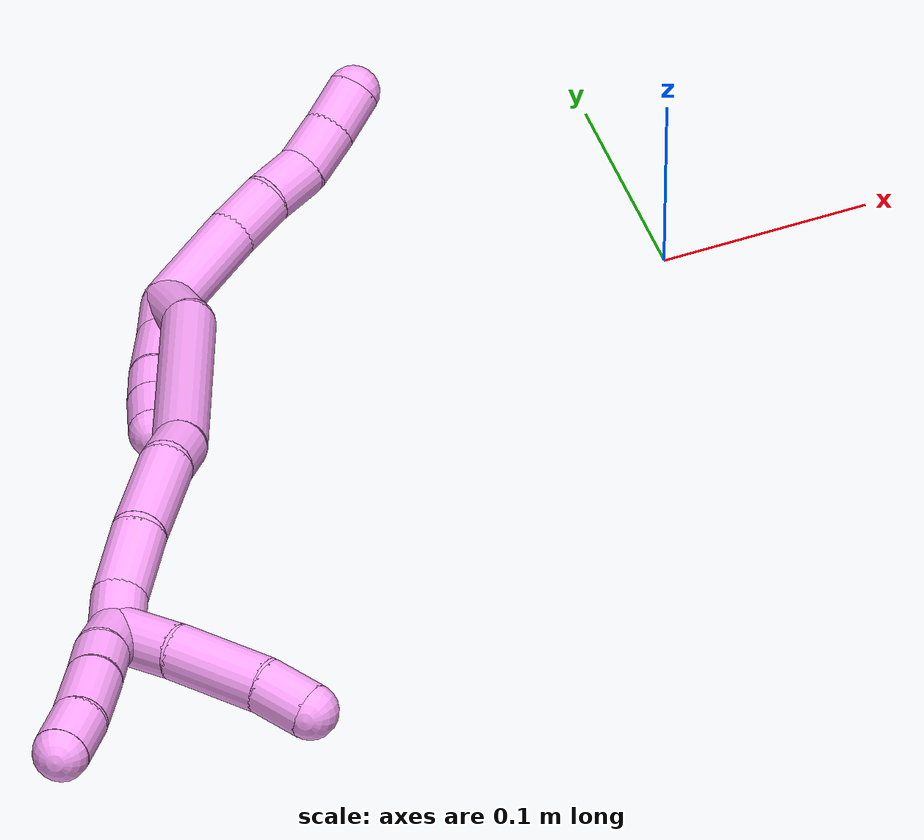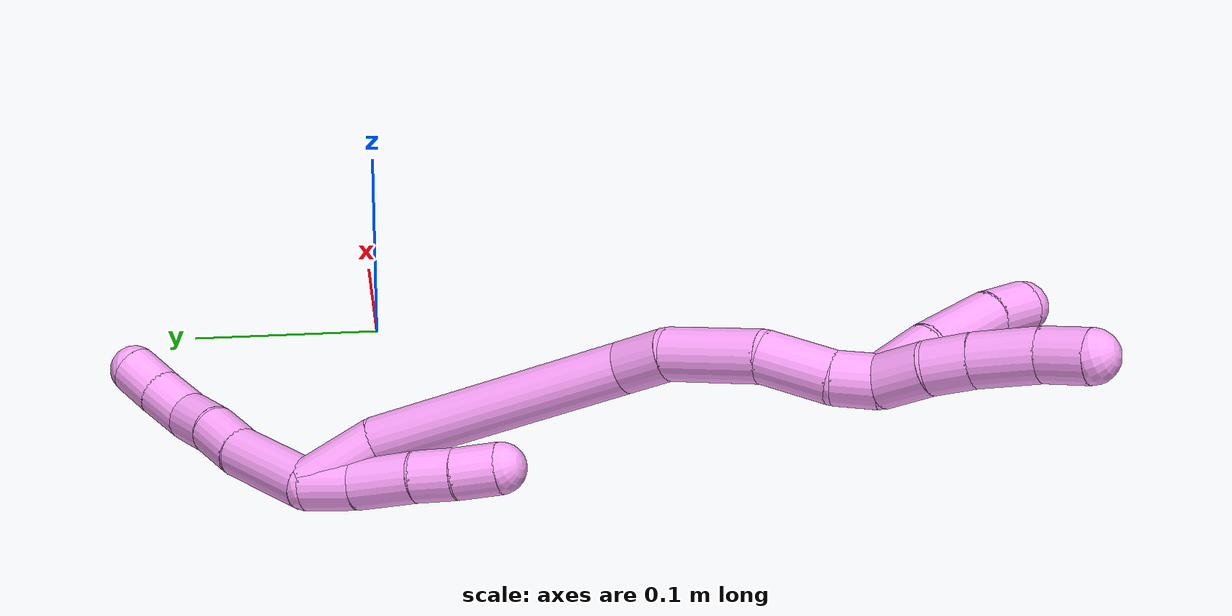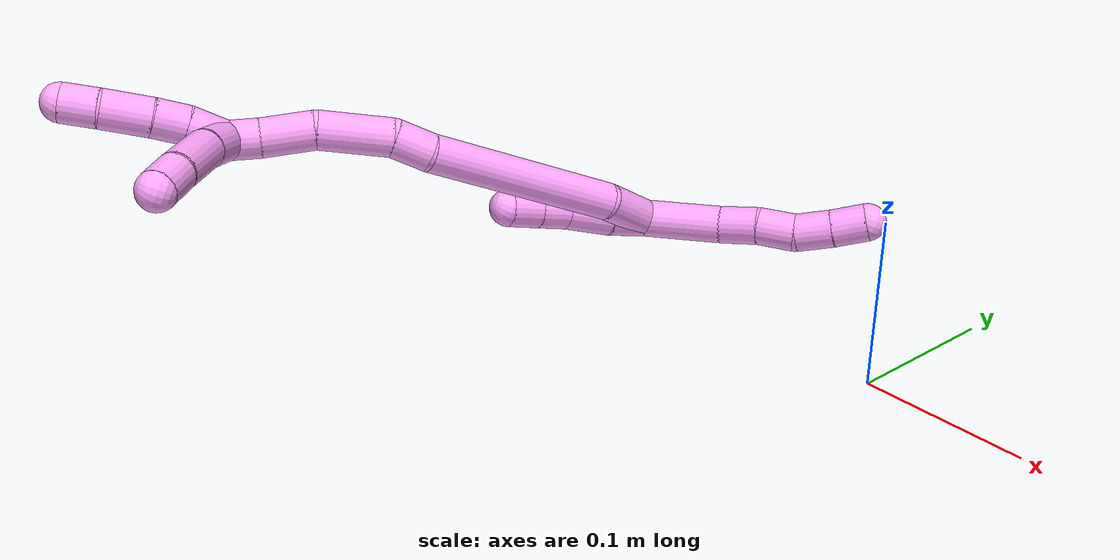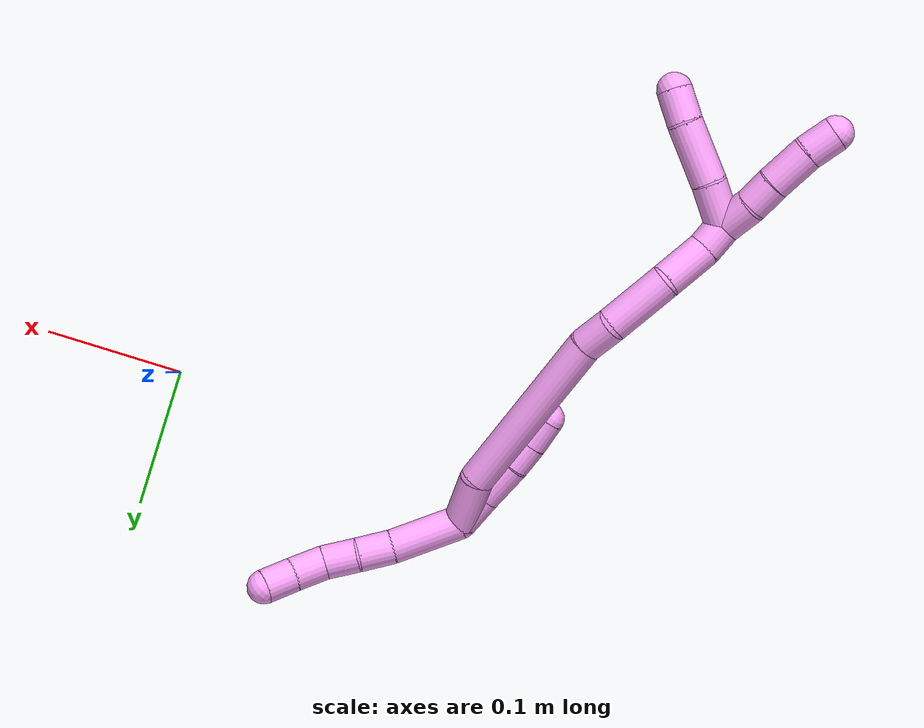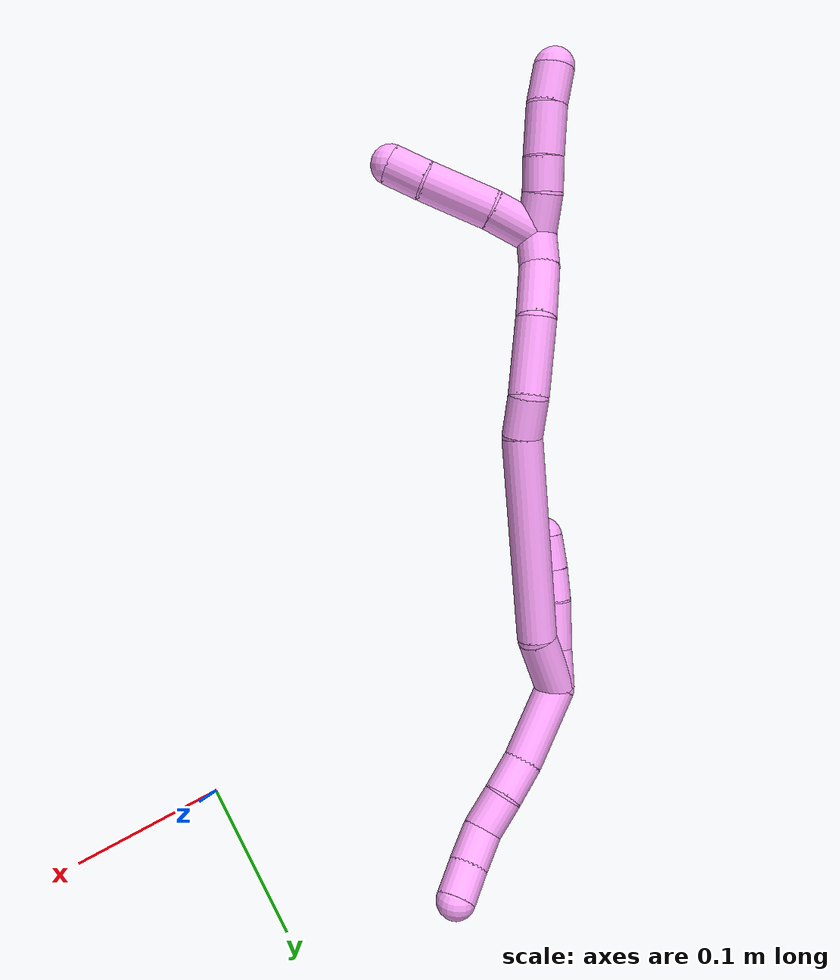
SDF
<sdf version="1.7">
 <world name="default">
  <model name="4">
   <static>0</static>
   <link name="4">
    <collision name="collision-cylinder-e_1_2_8">
     <pose>0.013009 0.005398 -0.021896 -2.8999 0.523219 -2.28998</pose>
     <geometry><cylinder><radius>0.0125</radius><length>0.052069</length></cylinder></geometry>
     <surface>
      <friction><ode><mu>1.16</mu><mu2>1.16</mu2><slip1>0</slip1><slip2>0</slip2></ode></friction>
      <contact><ode><kp>1e+06</kp><kd>1</kd><max_vel>0</max_vel><min_depth>0.001</min_depth></ode></contact>
     </surface>
    </collision>
    <visual name="visual-cylinder-e_1_2_8">
     <pose>0.013009 0.005398 -0.021896 -2.8999 0.523219 -2.28998</pose>
     <geometry><cylinder><radius>0.0125</radius><length>0.052069</length></cylinder></geometry>
     <material><ambient>1 0.65098 0.996078 1</ambient></material>
    </visual>
    <collision name="collision-cylinder-e_2_8_9">
     <pose>0.034109 0.013731 -0.053395 -2.84489 0.678266 -2.34013</pose>
     <geometry><cylinder><radius>0.0125</radius><length>0.025792</length></cylinder></geometry>
     <surface>
      <friction><ode><mu>1.16</mu><mu2>1.16</mu2><slip1>0</slip1><slip2>0</slip2></ode></friction>
      <contact><ode><kp>1e+06</kp><kd>1</kd><max_vel>0</max_vel><min_depth>0.001</min_depth></ode></contact>
     </surface>
    </collision>
    <visual name="visual-cylinder-e_2_8_9">
     <pose>0.034109 0.013731 -0.053395 -2.84489 0.678266 -2.34013</pose>
     <geometry><cylinder><radius>0.0125</radius><length>0.025792</length></cylinder></geometry>
     <material><ambient>1 0.65098 0.996078 1</ambient></material>
    </visual>
    <collision name="collision-cylinder-e_3_9_10">
     <pose>0.049295 0.017881 -0.073143 -3.02245 0.606924 -2.76515</pose>
     <geometry><cylinder><radius>0.0125</radius><length>0.024879</length></cylinder></geometry>
     <surface>
      <friction><ode><mu>1.16</mu><mu2>1.16</mu2><slip1>0</slip1><slip2>0</slip2></ode></friction>
      <contact><ode><kp>1e+06</kp><kd>1</kd><max_vel>0</max_vel><min_depth>0.001</min_depth></ode></contact>
     </surface>
    </collision>
    <visual name="visual-cylinder-e_3_9_10">
     <pose>0.049295 0.017881 -0.073143 -3.02245 0.606924 -2.76515</pose>
     <geometry><cylinder><radius>0.0125</radius><length>0.024879</length></cylinder></geometry>
     <material><ambient>1 0.65098 0.996078 1</ambient></material>
    </visual>
    <collision name="collision-cylinder-e_4_10_11">
     <pose>0.063314 0.023806 -0.09216 -2.65356 0.603562 -1.79231</pose>
     <geometry><cylinder><radius>0.0125</radius><length>0.0244</length></cylinder></geometry>
     <surface>
      <friction><ode><mu>1.16</mu><mu2>1.16</mu2><slip1>0</slip1><slip2>0</slip2></ode></friction>
      <contact><ode><kp>1e+06</kp><kd>1</kd><max_vel>0</max_vel><min_depth>0.001</min_depth></ode></contact>
     </surface>
    </collision>
    <visual name="visual-cylinder-e_4_10_11">
     <pose>0.063314 0.023806 -0.09216 -2.65356 0.603562 -1.79231</pose>
     <geometry><cylinder><radius>0.0125</radius><length>0.0244</length></cylinder></geometry>
     <material><ambient>1 0.65098 0.996078 1</ambient></material>
    </visual>
    <collision name="collision-cylinder-e_5_11_6">
     <pose>0.07675 0.033589 -0.108938 -2.57108 0.606076 -1.63486</pose>
     <geometry><cylinder><radius>0.0125</radius><length>0.022861</length></cylinder></geometry>
     <surface>
      <friction><ode><mu>1.16</mu><mu2>1.16</mu2><slip1>0</slip1><slip2>0</slip2></ode></friction>
      <contact><ode><kp>1e+06</kp><kd>1</kd><max_vel>0</max_vel><min_depth>0.001</min_depth></ode></contact>
     </surface>
    </collision>
    <visual name="visual-cylinder-e_5_11_6">
     <pose>0.07675 0.033589 -0.108938 -2.57108 0.606076 -1.63486</pose>
     <geometry><cylinder><radius>0.0125</radius><length>0.022861</length></cylinder></geometry>
     <material><ambient>1 0.65098 0.996078 1</ambient></material>
    </visual>
    <collision name="collision-cylinder-e_1_2_12">
     <pose>-3e-06 -0.004094 0.012323 0.320768 -0.000247 -4e-05</pose>
     <geometry><cylinder><radius>0.0125</radius><length>0.025971</length></cylinder></geometry>
     <surface>
      <friction><ode><mu>1.16</mu><mu2>1.16</mu2><slip1>0</slip1><slip2>0</slip2></ode></friction>
      <contact><ode><kp>1e+06</kp><kd>1</kd><max_vel>0</max_vel><min_depth>0.001</min_depth></ode></contact>
     </surface>
    </collision>
    <visual name="visual-cylinder-e_1_2_12">
     <pose>-3e-06 -0.004094 0.012323 0.320768 -0.000247 -4e-05</pose>
     <geometry><cylinder><radius>0.0125</radius><length>0.025971</length></cylinder></geometry>
     <material><ambient>1 0.65098 0.996078 1</ambient></material>
    </visual>
    <collision name="collision-cylinder-e_2_12_13">
     <pose>0.000415 -0.011466 0.040081 0.209213 0.026685 0.002802</pose>
     <geometry><cylinder><radius>0.0125</radius><length>0.03157</length></cylinder></geometry>
     <surface>
      <friction><ode><mu>1.16</mu><mu2>1.16</mu2><slip1>0</slip1><slip2>0</slip2></ode></friction>
      <contact><ode><kp>1e+06</kp><kd>1</kd><max_vel>0</max_vel><min_depth>0.001</min_depth></ode></contact>
     </surface>
    </collision>
    <visual name="visual-cylinder-e_2_12_13">
     <pose>0.000415 -0.011466 0.040081 0.209213 0.026685 0.002802</pose>
     <geometry><cylinder><radius>0.0125</radius><length>0.03157</length></cylinder></geometry>
     <material><ambient>1 0.65098 0.996078 1</ambient></material>
    </visual>
    <collision name="collision-cylinder-e_3_13_14">
     <pose>0.001392 -0.017817 0.065247 0.305993 0.054441 0.008397</pose>
     <geometry><cylinder><radius>0.0125</radius><length>0.020438</length></cylinder></geometry>
     <surface>
      <friction><ode><mu>1.16</mu><mu2>1.16</mu2><slip1>0</slip1><slip2>0</slip2></ode></friction>
      <contact><ode><kp>1e+06</kp><kd>1</kd><max_vel>0</max_vel><min_depth>0.001</min_depth></ode></contact>
     </surface>
    </collision>
    <visual name="visual-cylinder-e_3_13_14">
     <pose>0.001392 -0.017817 0.065247 0.305993 0.054441 0.008397</pose>
     <geometry><cylinder><radius>0.0125</radius><length>0.020438</length></cylinder></geometry>
     <material><ambient>1 0.65098 0.996078 1</ambient></material>
    </visual>
    <collision name="collision-cylinder-e_4_14_5">
     <pose>0.003402 -0.024147 0.085394 0.302942 0.132474 0.02025</pose>
     <geometry><cylinder><radius>0.0125</radius><length>0.022021</length></cylinder></geometry>
     <surface>
      <friction><ode><mu>1.16</mu><mu2>1.16</mu2><slip1>0</slip1><slip2>0</slip2></ode></friction>
      <contact><ode><kp>1e+06</kp><kd>1</kd><max_vel>0</max_vel><min_depth>0.001</min_depth></ode></contact>
     </surface>
    </collision>
    <visual name="visual-cylinder-e_4_14_5">
     <pose>0.003402 -0.024147 0.085394 0.302942 0.132474 0.02025</pose>
     <geometry><cylinder><radius>0.0125</radius><length>0.022021</length></cylinder></geometry>
     <material><ambient>1 0.65098 0.996078 1</ambient></material>
    </visual>
    <collision name="collision-cylinder-e_1_2_15">
     <pose>0.008978 -0.000705 0.018175 0.038744 0.458519 0.009043</pose>
     <geometry><cylinder><radius>0.0125</radius><length>0.040568</length></cylinder></geometry>
     <surface>
      <friction><ode><mu>1.16</mu><mu2>1.16</mu2><slip1>0</slip1><slip2>0</slip2></ode></friction>
      <contact><ode><kp>1e+06</kp><kd>1</kd><max_vel>0</max_vel><min_depth>0.001</min_depth></ode></contact>
     </surface>
    </collision>
    <visual name="visual-cylinder-e_1_2_15">
     <pose>0.008978 -0.000705 0.018175 0.038744 0.458519 0.009043</pose>
     <geometry><cylinder><radius>0.0125</radius><length>0.040568</length></cylinder></geometry>
     <material><ambient>1 0.65098 0.996078 1</ambient></material>
    </visual>
    <collision name="collision-cylinder-e_2_15_16">
     <pose>0.027369 -0.008825 0.100773 0.114605 0.144139 0.008283</pose>
     <geometry><cylinder><radius>0.0125</radius><length>0.131055</length></cylinder></geometry>
     <surface>
      <friction><ode><mu>1.16</mu><mu2>1.16</mu2><slip1>0</slip1><slip2>0</slip2></ode></friction>
      <contact><ode><kp>1e+06</kp><kd>1</kd><max_vel>0</max_vel><min_depth>0.001</min_depth></ode></contact>
     </surface>
    </collision>
    <visual name="visual-cylinder-e_2_15_16">
     <pose>0.027369 -0.008825 0.100773 0.114605 0.144139 0.008283</pose>
     <geometry><cylinder><radius>0.0125</radius><length>0.131055</length></cylinder></geometry>
     <material><ambient>1 0.65098 0.996078 1</ambient></material>
    </visual>
    <collision name="collision-cylinder-e_3_16_17">
     <pose>0.036367 -0.015948 0.177807 -0.023185 -0.032816 0.00038</pose>
     <geometry><cylinder><radius>0.0125</radius><length>0.025244</length></cylinder></geometry>
     <surface>
      <friction><ode><mu>1.16</mu><mu2>1.16</mu2><slip1>0</slip1><slip2>0</slip2></ode></friction>
      <contact><ode><kp>1e+06</kp><kd>1</kd><max_vel>0</max_vel><min_depth>0.001</min_depth></ode></contact>
     </surface>
    </collision>
    <visual name="visual-cylinder-e_3_16_17">
     <pose>0.036367 -0.015948 0.177807 -0.023185 -0.032816 0.00038</pose>
     <geometry><cylinder><radius>0.0125</radius><length>0.025244</length></cylinder></geometry>
     <material><ambient>1 0.65098 0.996078 1</ambient></material>
    </visual>
    <collision name="collision-cylinder-e_4_17_18">
     <pose>0.032501 -0.021488 0.213207 0.250578 -0.145706 -0.018383</pose>
     <geometry><cylinder><radius>0.0125</radius><length>0.047549</length></cylinder></geometry>
     <surface>
      <friction><ode><mu>1.16</mu><mu2>1.16</mu2><slip1>0</slip1><slip2>0</slip2></ode></friction>
      <contact><ode><kp>1e+06</kp><kd>1</kd><max_vel>0</max_vel><min_depth>0.001</min_depth></ode></contact>
     </surface>
    </collision>
    <visual name="visual-cylinder-e_4_17_18">
     <pose>0.032501 -0.021488 0.213207 0.250578 -0.145706 -0.018383</pose>
     <geometry><cylinder><radius>0.0125</radius><length>0.047549</length></cylinder></geometry>
     <material><ambient>1 0.65098 0.996078 1</ambient></material>
    </visual>
    <collision name="collision-cylinder-e_5_18_19">
     <pose>0.024605 -0.035357 0.250755 0.498546 -0.258541 -0.066161</pose>
     <geometry><cylinder><radius>0.0125</radius><length>0.034769</length></cylinder></geometry>
     <surface>
      <friction><ode><mu>1.16</mu><mu2>1.16</mu2><slip1>0</slip1><slip2>0</slip2></ode></friction>
      <contact><ode><kp>1e+06</kp><kd>1</kd><max_vel>0</max_vel><min_depth>0.001</min_depth></ode></contact>
     </surface>
    </collision>
    <visual name="visual-cylinder-e_5_18_19">
     <pose>0.024605 -0.035357 0.250755 0.498546 -0.258541 -0.066161</pose>
     <geometry><cylinder><radius>0.0125</radius><length>0.034769</length></cylinder></geometry>
     <material><ambient>1 0.65098 0.996078 1</ambient></material>
    </visual>
    <collision name="collision-cylinder-e_6_19_1">
     <pose>0.019766 -0.047786 0.274944 0.436054 -0.037811 -0.008378</pose>
     <geometry><cylinder><radius>0.0125</radius><length>0.020816</length></cylinder></geometry>
     <surface>
      <friction><ode><mu>1.16</mu><mu2>1.16</mu2><slip1>0</slip1><slip2>0</slip2></ode></friction>
      <contact><ode><kp>1e+06</kp><kd>1</kd><max_vel>0</max_vel><min_depth>0.001</min_depth></ode></contact>
     </surface>
    </collision>
    <visual name="visual-cylinder-e_6_19_1">
     <pose>0.019766 -0.047786 0.274944 0.436054 -0.037811 -0.008378</pose>
     <geometry><cylinder><radius>0.0125</radius><length>0.020816</length></cylinder></geometry>
     <material><ambient>1 0.65098 0.996078 1</ambient></material>
    </visual>
    <collision name="collision-cylinder-e_1_1_20">
     <pose>0.032847 -0.058068 0.290843 0.738258 0.994795 0.414057</pose>
     <geometry><cylinder><radius>0.0125</radius><length>0.032133</length></cylinder></geometry>
     <surface>
      <friction><ode><mu>1.16</mu><mu2>1.16</mu2><slip1>0</slip1><slip2>0</slip2></ode></friction>
      <contact><ode><kp>1e+06</kp><kd>1</kd><max_vel>0</max_vel><min_depth>0.001</min_depth></ode></contact>
     </surface>
    </collision>
    <visual name="visual-cylinder-e_1_1_20">
     <pose>0.032847 -0.058068 0.290843 0.738258 0.994795 0.414057</pose>
     <geometry><cylinder><radius>0.0125</radius><length>0.032133</length></cylinder></geometry>
     <material><ambient>1 0.65098 0.996078 1</ambient></material>
    </visual>
    <collision name="collision-cylinder-e_2_20_21">
     <pose>0.06425 -0.074475 0.304341 0.981887 0.956415 0.540639</pose>
     <geometry><cylinder><radius>0.0125</radius><length>0.043883</length></cylinder></geometry>
     <surface>
      <friction><ode><mu>1.16</mu><mu2>1.16</mu2><slip1>0</slip1><slip2>0</slip2></ode></friction>
      <contact><ode><kp>1e+06</kp><kd>1</kd><max_vel>0</max_vel><min_depth>0.001</min_depth></ode></contact>
     </surface>
    </collision>
    <visual name="visual-cylinder-e_2_20_21">
     <pose>0.06425 -0.074475 0.304341 0.981887 0.956415 0.540639</pose>
     <geometry><cylinder><radius>0.0125</radius><length>0.043883</length></cylinder></geometry>
     <material><ambient>1 0.65098 0.996078 1</ambient></material>
    </visual>
    <collision name="collision-cylinder-e_3_21_4">
     <pose>0.090946 -0.092099 0.315422 1.05224 0.819883 0.494393</pose>
     <geometry><cylinder><radius>0.0125</radius><length>0.023984</length></cylinder></geometry>
     <surface>
      <friction><ode><mu>1.16</mu><mu2>1.16</mu2><slip1>0</slip1><slip2>0</slip2></ode></friction>
      <contact><ode><kp>1e+06</kp><kd>1</kd><max_vel>0</max_vel><min_depth>0.001</min_depth></ode></contact>
     </surface>
    </collision>
    <visual name="visual-cylinder-e_3_21_4">
     <pose>0.090946 -0.092099 0.315422 1.05224 0.819883 0.494393</pose>
     <geometry><cylinder><radius>0.0125</radius><length>0.023984</length></cylinder></geometry>
     <material><ambient>1 0.65098 0.996078 1</ambient></material>
    </visual>
    <collision name="collision-cylinder-e_1_1_22">
     <pose>0.018949 -0.051857 0.296829 -0.025814 -0.034035 0.000439</pose>
     <geometry><cylinder><radius>0.0125</radius><length>0.024939</length></cylinder></geometry>
     <surface>
      <friction><ode><mu>1.16</mu><mu2>1.16</mu2><slip1>0</slip1><slip2>0</slip2></ode></friction>
      <contact><ode><kp>1e+06</kp><kd>1</kd><max_vel>0</max_vel><min_depth>0.001</min_depth></ode></contact>
     </surface>
    </collision>
    <visual name="visual-cylinder-e_1_1_22">
     <pose>0.018949 -0.051857 0.296829 -0.025814 -0.034035 0.000439</pose>
     <geometry><cylinder><radius>0.0125</radius><length>0.024939</length></cylinder></geometry>
     <material><ambient>1 0.65098 0.996078 1</ambient></material>
    </visual>
    <collision name="collision-cylinder-e_2_22_23">
     <pose>0.018657 -0.053056 0.319723 0.144683 0.012562 0.00091</pose>
     <geometry><cylinder><radius>0.0125</radius><length>0.021096</length></cylinder></geometry>
     <surface>
      <friction><ode><mu>1.16</mu><mu2>1.16</mu2><slip1>0</slip1><slip2>0</slip2></ode></friction>
      <contact><ode><kp>1e+06</kp><kd>1</kd><max_vel>0</max_vel><min_depth>0.001</min_depth></ode></contact>
     </surface>
    </collision>
    <visual name="visual-cylinder-e_2_22_23">
     <pose>0.018657 -0.053056 0.319723 0.144683 0.012562 0.00091</pose>
     <geometry><cylinder><radius>0.0125</radius><length>0.021096</length></cylinder></geometry>
     <material><ambient>1 0.65098 0.996078 1</ambient></material>
    </visual>
    <collision name="collision-cylinder-e_3_23_24">
     <pose>0.017813 -0.057443 0.345388 0.186081 -0.062923 -0.005873</pose>
     <geometry><cylinder><radius>0.0125</radius><length>0.031051</length></cylinder></geometry>
     <surface>
      <friction><ode><mu>1.16</mu><mu2>1.16</mu2><slip1>0</slip1><slip2>0</slip2></ode></friction>
      <contact><ode><kp>1e+06</kp><kd>1</kd><max_vel>0</max_vel><min_depth>0.001</min_depth></ode></contact>
     </surface>
    </collision>
    <visual name="visual-cylinder-e_3_23_24">
     <pose>0.017813 -0.057443 0.345388 0.186081 -0.062923 -0.005873</pose>
     <geometry><cylinder><radius>0.0125</radius><length>0.031051</length></cylinder></geometry>
     <material><ambient>1 0.65098 0.996078 1</ambient></material>
    </visual>
    <collision name="collision-cylinder-e_4_24_3">
     <pose>0.014394 -0.062442 0.371604 0.191664 -0.214904 -0.020737</pose>
     <geometry><cylinder><radius>0.0125</radius><length>0.022914</length></cylinder></geometry>
     <surface>
      <friction><ode><mu>1.16</mu><mu2>1.16</mu2><slip1>0</slip1><slip2>0</slip2></ode></friction>
      <contact><ode><kp>1e+06</kp><kd>1</kd><max_vel>0</max_vel><min_depth>0.001</min_depth></ode></contact>
     </surface>
    </collision>
    <visual name="visual-cylinder-e_4_24_3">
     <pose>0.014394 -0.062442 0.371604 0.191664 -0.214904 -0.020737</pose>
     <geometry><cylinder><radius>0.0125</radius><length>0.022914</length></cylinder></geometry>
     <material><ambient>1 0.65098 0.996078 1</ambient></material>
    </visual>
    <collision name="collision-sphere-3">
     <pose>0.01195 -0.064575 0.382592 0 -0 0</pose>
     <geometry><sphere><radius>0.0125</radius></sphere></geometry>
     <surface>
      <friction><ode><mu>1.16</mu><mu2>1.16</mu2><slip1>0</slip1><slip2>0</slip2></ode></friction>
      <contact><ode><kp>1e+06</kp><kd>1</kd><max_vel>0</max_vel><min_depth>0.001</min_depth></ode></contact>
     </surface>
    </collision>
    <visual name="visual-sphere-3">
     <pose>0.01195 -0.064575 0.382592 0 -0 0</pose>
     <geometry><sphere><radius>0.0125</radius></sphere></geometry>
     <material><ambient>1 0.65098 0.996078 1</ambient></material>
    </visual>
    <collision name="collision-sphere-24">
     <pose>0.016837 -0.06031 0.360615 0 -0 0</pose>
     <geometry><sphere><radius>0.0125</radius></sphere></geometry>
     <surface>
      <friction><ode><mu>1.16</mu><mu2>1.16</mu2><slip1>0</slip1><slip2>0</slip2></ode></friction>
      <contact><ode><kp>1e+06</kp><kd>1</kd><max_vel>0</max_vel><min_depth>0.001</min_depth></ode></contact>
     </surface>
    </collision>
    <visual name="visual-sphere-24">
     <pose>0.016837 -0.06031 0.360615 0 -0 0</pose>
     <geometry><sphere><radius>0.0125</radius></sphere></geometry>
     <material><ambient>1 0.65098 0.996078 1</ambient></material>
    </visual>
    <collision name="collision-sphere-23">
     <pose>0.018789 -0.054577 0.33016 0 -0 0</pose>
     <geometry><sphere><radius>0.0125</radius></sphere></geometry>
     <surface>
      <friction><ode><mu>1.16</mu><mu2>1.16</mu2><slip1>0</slip1><slip2>0</slip2></ode></friction>
      <contact><ode><kp>1e+06</kp><kd>1</kd><max_vel>0</max_vel><min_depth>0.001</min_depth></ode></contact>
     </surface>
    </collision>
    <visual name="visual-sphere-23">
     <pose>0.018789 -0.054577 0.33016 0 -0 0</pose>
     <geometry><sphere><radius>0.0125</radius></sphere></geometry>
     <material><ambient>1 0.65098 0.996078 1</ambient></material>
    </visual>
    <collision name="collision-sphere-22">
     <pose>0.018524 -0.051535 0.309287 0 -0 0</pose>
     <geometry><sphere><radius>0.0125</radius></sphere></geometry>
     <surface>
      <friction><ode><mu>1.16</mu><mu2>1.16</mu2><slip1>0</slip1><slip2>0</slip2></ode></friction>
      <contact><ode><kp>1e+06</kp><kd>1</kd><max_vel>0</max_vel><min_depth>0.001</min_depth></ode></contact>
     </surface>
    </collision>
    <visual name="visual-sphere-22">
     <pose>0.018524 -0.051535 0.309287 0 -0 0</pose>
     <geometry><sphere><radius>0.0125</radius></sphere></geometry>
     <material><ambient>1 0.65098 0.996078 1</ambient></material>
    </visual>
    <collision name="collision-sphere-4">
     <pose>0.099713 -0.099206 0.319478 0 -0 0</pose>
     <geometry><sphere><radius>0.0125</radius></sphere></geometry>
     <surface>
      <friction><ode><mu>1.16</mu><mu2>1.16</mu2><slip1>0</slip1><slip2>0</slip2></ode></friction>
      <contact><ode><kp>1e+06</kp><kd>1</kd><max_vel>0</max_vel><min_depth>0.001</min_depth></ode></contact>
     </surface>
    </collision>
    <visual name="visual-sphere-4">
     <pose>0.099713 -0.099206 0.319478 0 -0 0</pose>
     <geometry><sphere><radius>0.0125</radius></sphere></geometry>
     <material><ambient>1 0.65098 0.996078 1</ambient></material>
    </visual>
    <collision name="collision-sphere-21">
     <pose>0.082179 -0.084992 0.311367 0 -0 0</pose>
     <geometry><sphere><radius>0.0125</radius></sphere></geometry>
     <surface>
      <friction><ode><mu>1.16</mu><mu2>1.16</mu2><slip1>0</slip1><slip2>0</slip2></ode></friction>
      <contact><ode><kp>1e+06</kp><kd>1</kd><max_vel>0</max_vel><min_depth>0.001</min_depth></ode></contact>
     </surface>
    </collision>
    <visual name="visual-sphere-21">
     <pose>0.082179 -0.084992 0.311367 0 -0 0</pose>
     <geometry><sphere><radius>0.0125</radius></sphere></geometry>
     <material><ambient>1 0.65098 0.996078 1</ambient></material>
    </visual>
    <collision name="collision-sphere-20">
     <pose>0.046321 -0.063957 0.297316 0 -0 0</pose>
     <geometry><sphere><radius>0.0125</radius></sphere></geometry>
     <surface>
      <friction><ode><mu>1.16</mu><mu2>1.16</mu2><slip1>0</slip1><slip2>0</slip2></ode></friction>
      <contact><ode><kp>1e+06</kp><kd>1</kd><max_vel>0</max_vel><min_depth>0.001</min_depth></ode></contact>
     </surface>
    </collision>
    <visual name="visual-sphere-20">
     <pose>0.046321 -0.063957 0.297316 0 -0 0</pose>
     <geometry><sphere><radius>0.0125</radius></sphere></geometry>
     <material><ambient>1 0.65098 0.996078 1</ambient></material>
    </visual>
    <collision name="collision-sphere-6">
     <pose>0.083261 0.038663 -0.116845 0 -0 0</pose>
     <geometry><sphere><radius>0.0125</radius></sphere></geometry>
     <surface>
      <friction><ode><mu>1.16</mu><mu2>1.16</mu2><slip1>0</slip1><slip2>0</slip2></ode></friction>
      <contact><ode><kp>1e+06</kp><kd>1</kd><max_vel>0</max_vel><min_depth>0.001</min_depth></ode></contact>
     </surface>
    </collision>
    <visual name="visual-sphere-6">
     <pose>0.083261 0.038663 -0.116845 0 -0 0</pose>
     <geometry><sphere><radius>0.0125</radius></sphere></geometry>
     <material><ambient>1 0.65098 0.996078 1</ambient></material>
    </visual>
    <collision name="collision-sphere-11">
     <pose>0.070238 0.028515 -0.101032 0 -0 0</pose>
     <geometry><sphere><radius>0.0125</radius></sphere></geometry>
     <surface>
      <friction><ode><mu>1.16</mu><mu2>1.16</mu2><slip1>0</slip1><slip2>0</slip2></ode></friction>
      <contact><ode><kp>1e+06</kp><kd>1</kd><max_vel>0</max_vel><min_depth>0.001</min_depth></ode></contact>
     </surface>
    </collision>
    <visual name="visual-sphere-11">
     <pose>0.070238 0.028515 -0.101032 0 -0 0</pose>
     <geometry><sphere><radius>0.0125</radius></sphere></geometry>
     <material><ambient>1 0.65098 0.996078 1</ambient></material>
    </visual>
    <collision name="collision-sphere-10">
     <pose>0.056389 0.019096 -0.083288 0 -0 0</pose>
     <geometry><sphere><radius>0.0125</radius></sphere></geometry>
     <surface>
      <friction><ode><mu>1.16</mu><mu2>1.16</mu2><slip1>0</slip1><slip2>0</slip2></ode></friction>
      <contact><ode><kp>1e+06</kp><kd>1</kd><max_vel>0</max_vel><min_depth>0.001</min_depth></ode></contact>
     </surface>
    </collision>
    <visual name="visual-sphere-10">
     <pose>0.056389 0.019096 -0.083288 0 -0 0</pose>
     <geometry><sphere><radius>0.0125</radius></sphere></geometry>
     <material><ambient>1 0.65098 0.996078 1</ambient></material>
    </visual>
    <collision name="collision-sphere-9">
     <pose>0.0422 0.016667 -0.062997 0 -0 0</pose>
     <geometry><sphere><radius>0.0125</radius></sphere></geometry>
     <surface>
      <friction><ode><mu>1.16</mu><mu2>1.16</mu2><slip1>0</slip1><slip2>0</slip2></ode></friction>
      <contact><ode><kp>1e+06</kp><kd>1</kd><max_vel>0</max_vel><min_depth>0.001</min_depth></ode></contact>
     </surface>
    </collision>
    <visual name="visual-sphere-9">
     <pose>0.0422 0.016667 -0.062997 0 -0 0</pose>
     <geometry><sphere><radius>0.0125</radius></sphere></geometry>
     <material><ambient>1 0.65098 0.996078 1</ambient></material>
    </visual>
    <collision name="collision-sphere-2">
     <geometry><sphere><radius>0.0125</radius></sphere></geometry>
     <surface>
      <friction><ode><mu>1.16</mu><mu2>1.16</mu2><slip1>0</slip1><slip2>0</slip2></ode></friction>
      <contact><ode><kp>1e+06</kp><kd>1</kd><max_vel>0</max_vel><min_depth>0.001</min_depth></ode></contact>
     </surface>
    </collision>
    <visual name="visual-sphere-2">
     <geometry><sphere><radius>0.0125</radius></sphere></geometry>
     <material><ambient>1 0.65098 0.996078 1</ambient></material>
    </visual>
    <collision name="collision-sphere-19">
     <pose>0.02016 -0.043393 0.265516 0 -0 0</pose>
     <geometry><sphere><radius>0.0125</radius></sphere></geometry>
     <surface>
      <friction><ode><mu>1.16</mu><mu2>1.16</mu2><slip1>0</slip1><slip2>0</slip2></ode></friction>
      <contact><ode><kp>1e+06</kp><kd>1</kd><max_vel>0</max_vel><min_depth>0.001</min_depth></ode></contact>
     </surface>
    </collision>
    <visual name="visual-sphere-19">
     <pose>0.02016 -0.043393 0.265516 0 -0 0</pose>
     <geometry><sphere><radius>0.0125</radius></sphere></geometry>
     <material><ambient>1 0.65098 0.996078 1</ambient></material>
    </visual>
    <collision name="collision-sphere-8">
     <pose>0.026017 0.010795 -0.043792 0 -0 0</pose>
     <geometry><sphere><radius>0.0125</radius></sphere></geometry>
     <surface>
      <friction><ode><mu>1.16</mu><mu2>1.16</mu2><slip1>0</slip1><slip2>0</slip2></ode></friction>
      <contact><ode><kp>1e+06</kp><kd>1</kd><max_vel>0</max_vel><min_depth>0.001</min_depth></ode></contact>
     </surface>
    </collision>
    <visual name="visual-sphere-8">
     <pose>0.026017 0.010795 -0.043792 0 -0 0</pose>
     <geometry><sphere><radius>0.0125</radius></sphere></geometry>
     <material><ambient>1 0.65098 0.996078 1</ambient></material>
    </visual>
    <collision name="collision-sphere-12">
     <pose>-6e-06 -0.008188 0.024646 0 -0 0</pose>
     <geometry><sphere><radius>0.0125</radius></sphere></geometry>
     <surface>
      <friction><ode><mu>1.16</mu><mu2>1.16</mu2><slip1>0</slip1><slip2>0</slip2></ode></friction>
      <contact><ode><kp>1e+06</kp><kd>1</kd><max_vel>0</max_vel><min_depth>0.001</min_depth></ode></contact>
     </surface>
    </collision>
    <visual name="visual-sphere-12">
     <pose>-6e-06 -0.008188 0.024646 0 -0 0</pose>
     <geometry><sphere><radius>0.0125</radius></sphere></geometry>
     <material><ambient>1 0.65098 0.996078 1</ambient></material>
    </visual>
    <collision name="collision-sphere-13">
     <pose>0.000836 -0.014743 0.055517 0 -0 0</pose>
     <geometry><sphere><radius>0.0125</radius></sphere></geometry>
     <surface>
      <friction><ode><mu>1.16</mu><mu2>1.16</mu2><slip1>0</slip1><slip2>0</slip2></ode></friction>
      <contact><ode><kp>1e+06</kp><kd>1</kd><max_vel>0</max_vel><min_depth>0.001</min_depth></ode></contact>
     </surface>
    </collision>
    <visual name="visual-sphere-13">
     <pose>0.000836 -0.014743 0.055517 0 -0 0</pose>
     <geometry><sphere><radius>0.0125</radius></sphere></geometry>
     <material><ambient>1 0.65098 0.996078 1</ambient></material>
    </visual>
    <collision name="collision-sphere-14">
     <pose>0.001948 -0.020891 0.074977 0 -0 0</pose>
     <geometry><sphere><radius>0.0125</radius></sphere></geometry>
     <surface>
      <friction><ode><mu>1.16</mu><mu2>1.16</mu2><slip1>0</slip1><slip2>0</slip2></ode></friction>
      <contact><ode><kp>1e+06</kp><kd>1</kd><max_vel>0</max_vel><min_depth>0.001</min_depth></ode></contact>
     </surface>
    </collision>
    <visual name="visual-sphere-14">
     <pose>0.001948 -0.020891 0.074977 0 -0 0</pose>
     <geometry><sphere><radius>0.0125</radius></sphere></geometry>
     <material><ambient>1 0.65098 0.996078 1</ambient></material>
    </visual>
    <collision name="collision-sphere-5">
     <pose>0.004857 -0.027403 0.095811 0 -0 0</pose>
     <geometry><sphere><radius>0.0125</radius></sphere></geometry>
     <surface>
      <friction><ode><mu>1.16</mu><mu2>1.16</mu2><slip1>0</slip1><slip2>0</slip2></ode></friction>
      <contact><ode><kp>1e+06</kp><kd>1</kd><max_vel>0</max_vel><min_depth>0.001</min_depth></ode></contact>
     </surface>
    </collision>
    <visual name="visual-sphere-5">
     <pose>0.004857 -0.027403 0.095811 0 -0 0</pose>
     <geometry><sphere><radius>0.0125</radius></sphere></geometry>
     <material><ambient>1 0.65098 0.996078 1</ambient></material>
    </visual>
    <collision name="collision-sphere-15">
     <pose>0.017956 -0.001409 0.036351 0 -0 0</pose>
     <geometry><sphere><radius>0.0125</radius></sphere></geometry>
     <surface>
      <friction><ode><mu>1.16</mu><mu2>1.16</mu2><slip1>0</slip1><slip2>0</slip2></ode></friction>
      <contact><ode><kp>1e+06</kp><kd>1</kd><max_vel>0</max_vel><min_depth>0.001</min_depth></ode></contact>
     </surface>
    </collision>
    <visual name="visual-sphere-15">
     <pose>0.017956 -0.001409 0.036351 0 -0 0</pose>
     <geometry><sphere><radius>0.0125</radius></sphere></geometry>
     <material><ambient>1 0.65098 0.996078 1</ambient></material>
    </visual>
    <collision name="collision-sphere-16">
     <pose>0.036781 -0.01624 0.165196 0 -0 0</pose>
     <geometry><sphere><radius>0.0125</radius></sphere></geometry>
     <surface>
      <friction><ode><mu>1.16</mu><mu2>1.16</mu2><slip1>0</slip1><slip2>0</slip2></ode></friction>
      <contact><ode><kp>1e+06</kp><kd>1</kd><max_vel>0</max_vel><min_depth>0.001</min_depth></ode></contact>
     </surface>
    </collision>
    <visual name="visual-sphere-16">
     <pose>0.036781 -0.01624 0.165196 0 -0 0</pose>
     <geometry><sphere><radius>0.0125</radius></sphere></geometry>
     <material><ambient>1 0.65098 0.996078 1</ambient></material>
    </visual>
    <collision name="collision-sphere-17">
     <pose>0.035953 -0.015655 0.190419 0 -0 0</pose>
     <geometry><sphere><radius>0.0125</radius></sphere></geometry>
     <surface>
      <friction><ode><mu>1.16</mu><mu2>1.16</mu2><slip1>0</slip1><slip2>0</slip2></ode></friction>
      <contact><ode><kp>1e+06</kp><kd>1</kd><max_vel>0</max_vel><min_depth>0.001</min_depth></ode></contact>
     </surface>
    </collision>
    <visual name="visual-sphere-17">
     <pose>0.035953 -0.015655 0.190419 0 -0 0</pose>
     <geometry><sphere><radius>0.0125</radius></sphere></geometry>
     <material><ambient>1 0.65098 0.996078 1</ambient></material>
    </visual>
    <collision name="collision-sphere-18">
     <pose>0.029049 -0.027321 0.235994 0 -0 0</pose>
     <geometry><sphere><radius>0.0125</radius></sphere></geometry>
     <surface>
      <friction><ode><mu>1.16</mu><mu2>1.16</mu2><slip1>0</slip1><slip2>0</slip2></ode></friction>
      <contact><ode><kp>1e+06</kp><kd>1</kd><max_vel>0</max_vel><min_depth>0.001</min_depth></ode></contact>
     </surface>
    </collision>
    <visual name="visual-sphere-18">
     <pose>0.029049 -0.027321 0.235994 0 -0 0</pose>
     <geometry><sphere><radius>0.0125</radius></sphere></geometry>
     <material><ambient>1 0.65098 0.996078 1</ambient></material>
    </visual>
    <collision name="collision-sphere-1">
     <pose>0.019373 -0.052179 0.284371 0 -0 0</pose>
     <geometry><sphere><radius>0.0125</radius></sphere></geometry>
     <surface>
      <friction><ode><mu>1.16</mu><mu2>1.16</mu2><slip1>0</slip1><slip2>0</slip2></ode></friction>
      <contact><ode><kp>1e+06</kp><kd>1</kd><max_vel>0</max_vel><min_depth>0.001</min_depth></ode></contact>
     </surface>
    </collision>
    <visual name="visual-sphere-1">
     <pose>0.019373 -0.052179 0.284371 0 -0 0</pose>
     <geometry><sphere><radius>0.0125</radius></sphere></geometry>
     <material><ambient>1 0.65098 0.996078 1</ambient></material>
    </visual>
    <inertial>
     <pose>0.028915 -0.022318 0.136518 0 -0 0</pose>
     <mass>0.75</mass>
     <inertia>
      <ixx>0.000237</ixx>
      <ixy>0</ixy>
      <ixz>0</ixz>
      <iyy>0.000247</iyy>
      <iyz>0</iyz>
      <izz>1.2e-05</izz>
     </inertia>
    </inertial>
   </link>
   <pose>-0.226063 0.044069 0.011447 1.08303 -0.408478 -0.352571</pose>
  </model>
 </world>
</sdf>
